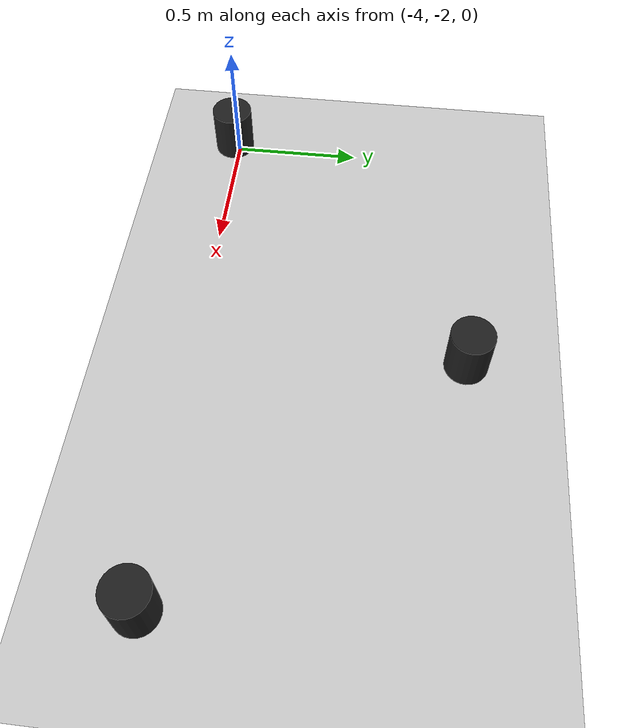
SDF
<sdf version="1.7">
 <world name="default">
  <model name="ground_plane">
   <static>1</static>
   <link name="link">
    <collision name="collision">
     <geometry><plane><normal>0 0 1</normal><size>100 100</size></plane></geometry>
     <surface>
      <contact><collide_bitmask>65535</collide_bitmask></contact>
      <friction><ode><mu>100</mu><mu2>50</mu2></ode></friction>
     </surface>
    </collision>
    <visual name="visual">
     <cast_shadows>0</cast_shadows>
     <geometry><plane><normal>0 0 1</normal><size>100 100</size></plane></geometry>
     <material>
      <script><uri>file://media/materials/scripts/gazebo.material</uri><name>Gazebo/Grey</name></script>
     </material>
    </visual>
   </link>
  </model>
  <model name="cylinder_clone_clone_0_clone_clone_0_clone">
   <link name="link">
    <inertial>
     <mass>1</mass>
     <inertia><ixx>0.145833</ixx><ixy>0</ixy><ixz>0</ixz><iyy>0.145833</iyy><iyz>0</iyz><izz>0.125</izz></inertia>
    </inertial>
    <visual name="visual">
     <geometry><cylinder><radius>0.08</radius><length>0.2</length></cylinder></geometry>
     <material>
      <script><name>Gazebo/Black</name><uri>file://media/materials/scripts/gazebo.material</uri></script>
      <shader type="vertex"><normal_map>__default__</normal_map></shader>
      <ambient>1 0 0 1</ambient>
      <diffuse>0.7 0.7 0.7 1</diffuse>
      <specular>0.01 0.01 0.01 1</specular>
      <emissive>0 0 0 1</emissive>
     </material>
    </visual>
    <collision name="collision">
     <geometry><cylinder><radius>0.08</radius><length>0.2</length></cylinder></geometry>
     <surface>
      <friction>
       <ode><mu>1</mu><mu2>1</mu2><fdir1>0 0 0</fdir1><slip1>0</slip1><slip2>0</slip2></ode>
       <torsional>
        <coefficient>1</coefficient>
        <patch_radius>0</patch_radius>
        <surface_radius>0</surface_radius>
        <use_patch_radius>1</use_patch_radius>
        <ode><slip>0</slip></ode>
       </torsional>
      </friction>
      <bounce><restitution_coefficient>0</restitution_coefficient><threshold>1e+06</threshold></bounce>
      <contact>
       <collide_without_contact>0</collide_without_contact>
       <collide_without_contact_bitmask>1</collide_without_contact_bitmask>
       <collide_bitmask>1</collide_bitmask>
       <ode>
        <soft_cfm>0</soft_cfm>
        <soft_erp>0.2</soft_erp>
        <kp>1e+13</kp>
        <kd>1</kd>
        <max_vel>0.01</max_vel>
        <min_depth>0</min_depth>
       </ode>
       <bullet>
        <split_impulse>1</split_impulse>
        <split_impulse_penetration_threshold>-0.01</split_impulse_penetration_threshold>
        <soft_cfm>0</soft_cfm>
        <soft_erp>0.2</soft_erp>
        <kp>1e+13</kp>
        <kd>1</kd>
       </bullet>
      </contact>
     </surface>
    </collision>
   </link>
   <static>1</static>
   <pose>-2.99248 -1.00754 0.1 0 -0 0</pose>
  </model>
  <model name="cylinder_clone_clone_0_clone_clone_0_clone_clone">
   <link name="link">
    <inertial>
     <mass>1</mass>
     <inertia><ixx>0.145833</ixx><ixy>0</ixy><ixz>0</ixz><iyy>0.145833</iyy><iyz>0</iyz><izz>0.125</izz></inertia>
    </inertial>
    <visual name="visual">
     <geometry><cylinder><radius>0.08</radius><length>0.2</length></cylinder></geometry>
     <material>
      <script><name>Gazebo/Black</name><uri>file://media/materials/scripts/gazebo.material</uri></script>
      <shader type="vertex"><normal_map>__default__</normal_map></shader>
      <ambient>1 0 0 1</ambient>
      <diffuse>0.7 0.7 0.7 1</diffuse>
      <specular>0.01 0.01 0.01 1</specular>
      <emissive>0 0 0 1</emissive>
     </material>
    </visual>
    <collision name="collision">
     <geometry><cylinder><radius>0.08</radius><length>0.2</length></cylinder></geometry>
     <surface>
      <friction>
       <ode><mu>1</mu><mu2>1</mu2><fdir1>0 0 0</fdir1><slip1>0</slip1><slip2>0</slip2></ode>
       <torsional>
        <coefficient>1</coefficient>
        <patch_radius>0</patch_radius>
        <surface_radius>0</surface_radius>
        <use_patch_radius>1</use_patch_radius>
        <ode><slip>0</slip></ode>
       </torsional>
      </friction>
      <bounce><restitution_coefficient>0</restitution_coefficient><threshold>1e+06</threshold></bounce>
      <contact>
       <collide_without_contact>0</collide_without_contact>
       <collide_without_contact_bitmask>1</collide_without_contact_bitmask>
       <collide_bitmask>1</collide_bitmask>
       <ode>
        <soft_cfm>0</soft_cfm>
        <soft_erp>0.2</soft_erp>
        <kp>1e+13</kp>
        <kd>1</kd>
        <max_vel>0.01</max_vel>
        <min_depth>0</min_depth>
       </ode>
       <bullet>
        <split_impulse>1</split_impulse>
        <split_impulse_penetration_threshold>-0.01</split_impulse_penetration_threshold>
        <soft_cfm>0</soft_cfm>
        <soft_erp>0.2</soft_erp>
        <kp>1e+13</kp>
        <kd>1</kd>
       </bullet>
      </contact>
     </surface>
    </collision>
   </link>
   <static>1</static>
   <pose>-4.02098 -2.02394 0.1 0 -0 0</pose>
  </model>
  <model name="cylinder_clone_clone_clone_clone_clone_clone_clone_clone_8">
   <link name="link">
    <inertial>
     <mass>1</mass>
     <inertia><ixx>0.145833</ixx><ixy>0</ixy><ixz>0</ixz><iyy>0.145833</iyy><iyz>0</iyz><izz>0.125</izz></inertia>
    </inertial>
    <visual name="visual">
     <geometry><cylinder><radius>0.08</radius><length>0.2</length></cylinder></geometry>
     <material>
      <script><name>Gazebo/Black</name><uri>file://media/materials/scripts/gazebo.material</uri></script>
      <shader type="vertex"><normal_map>__default__</normal_map></shader>
      <ambient>1 0 0 1</ambient>
      <diffuse>0.7 0.7 0.7 1</diffuse>
      <specular>0.01 0.01 0.01 1</specular>
      <emissive>0 0 0 1</emissive>
     </material>
    </visual>
    <collision name="collision">
     <geometry><cylinder><radius>0.08</radius><length>0.2</length></cylinder></geometry>
     <surface>
      <friction>
       <ode><mu>1</mu><mu2>1</mu2><fdir1>0 0 0</fdir1><slip1>0</slip1><slip2>0</slip2></ode>
       <torsional>
        <coefficient>1</coefficient>
        <patch_radius>0</patch_radius>
        <surface_radius>0</surface_radius>
        <use_patch_radius>1</use_patch_radius>
        <ode><slip>0</slip></ode>
       </torsional>
      </friction>
      <bounce><restitution_coefficient>0</restitution_coefficient><threshold>1e+06</threshold></bounce>
      <contact>
       <collide_without_contact>0</collide_without_contact>
       <collide_without_contact_bitmask>1</collide_without_contact_bitmask>
       <collide_bitmask>1</collide_bitmask>
       <ode>
        <soft_cfm>0</soft_cfm>
        <soft_erp>0.2</soft_erp>
        <kp>1e+13</kp>
        <kd>1</kd>
        <max_vel>0.01</max_vel>
        <min_depth>0</min_depth>
       </ode>
       <bullet>
        <split_impulse>1</split_impulse>
        <split_impulse_penetration_threshold>-0.01</split_impulse_penetration_threshold>
        <soft_cfm>0</soft_cfm>
        <soft_erp>0.2</soft_erp>
        <kp>1e+13</kp>
        <kd>1</kd>
       </bullet>
      </contact>
     </surface>
    </collision>
   </link>
   <static>1</static>
   <pose>-2.01238 -1.98764 0.1 0 -0 0</pose>
  </model>
 </world>
</sdf>
